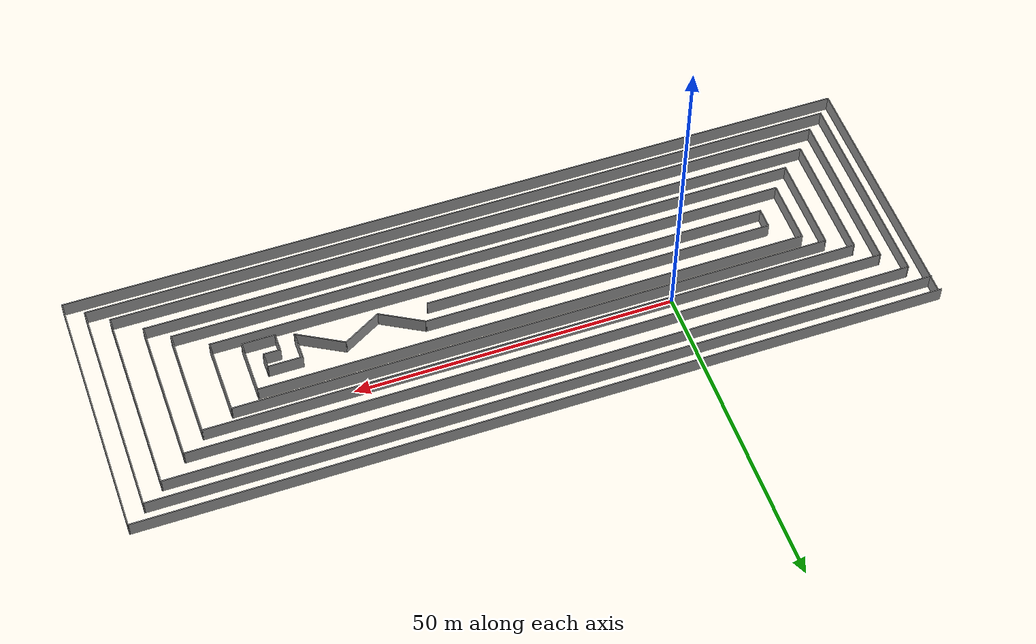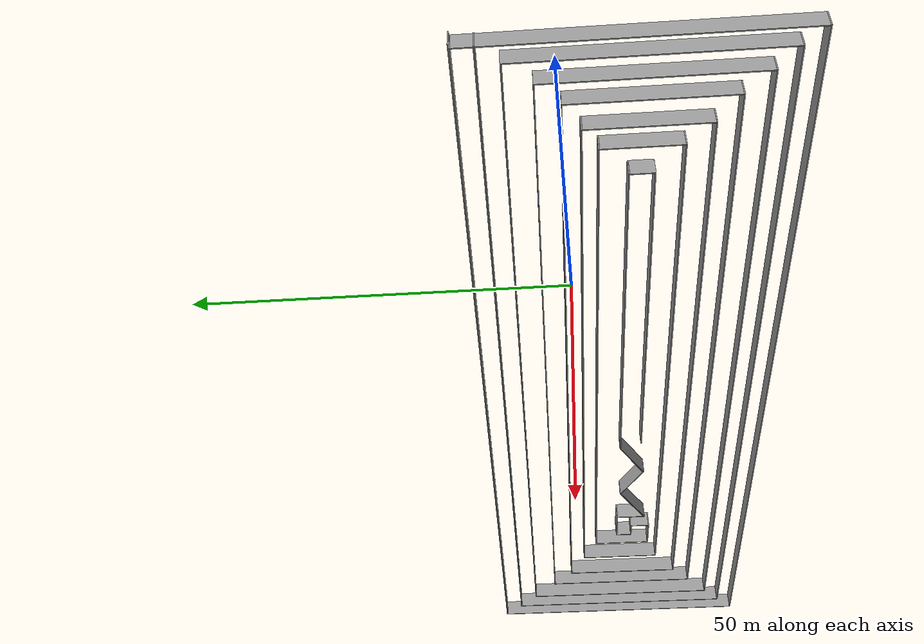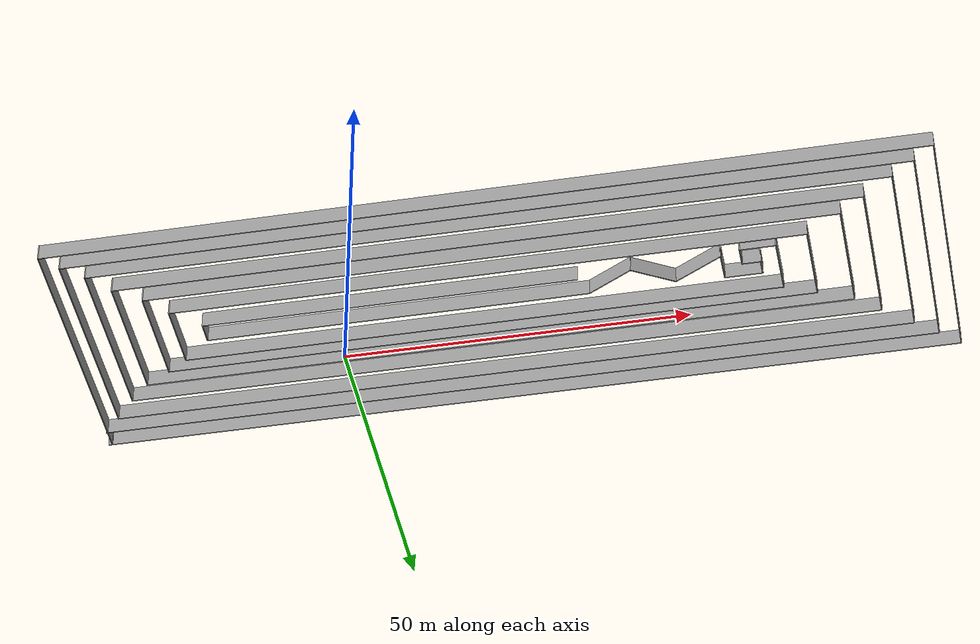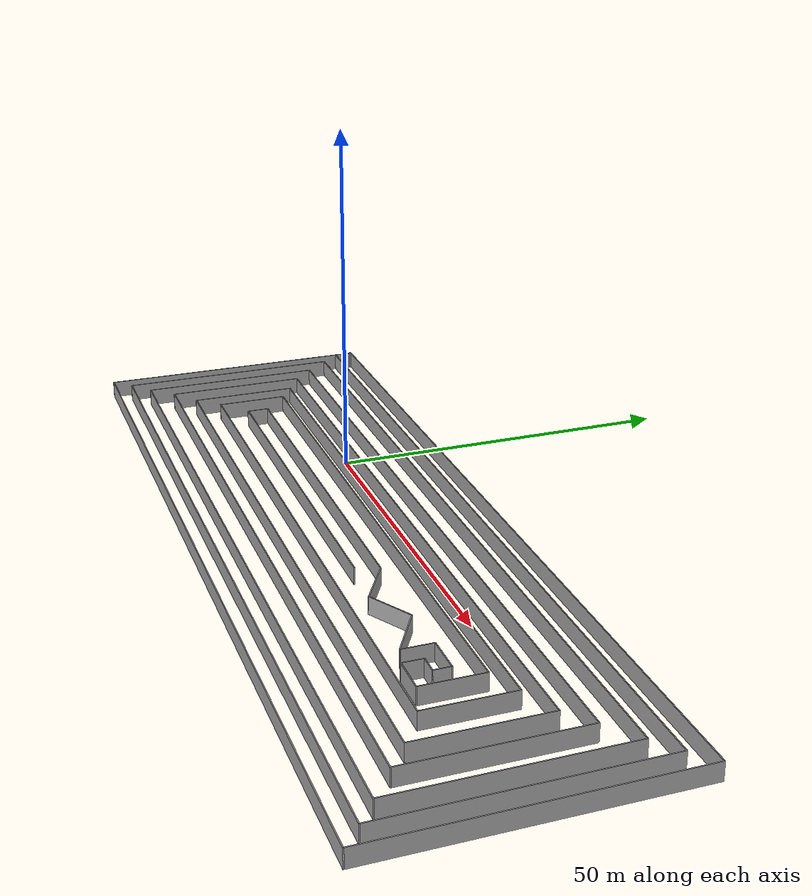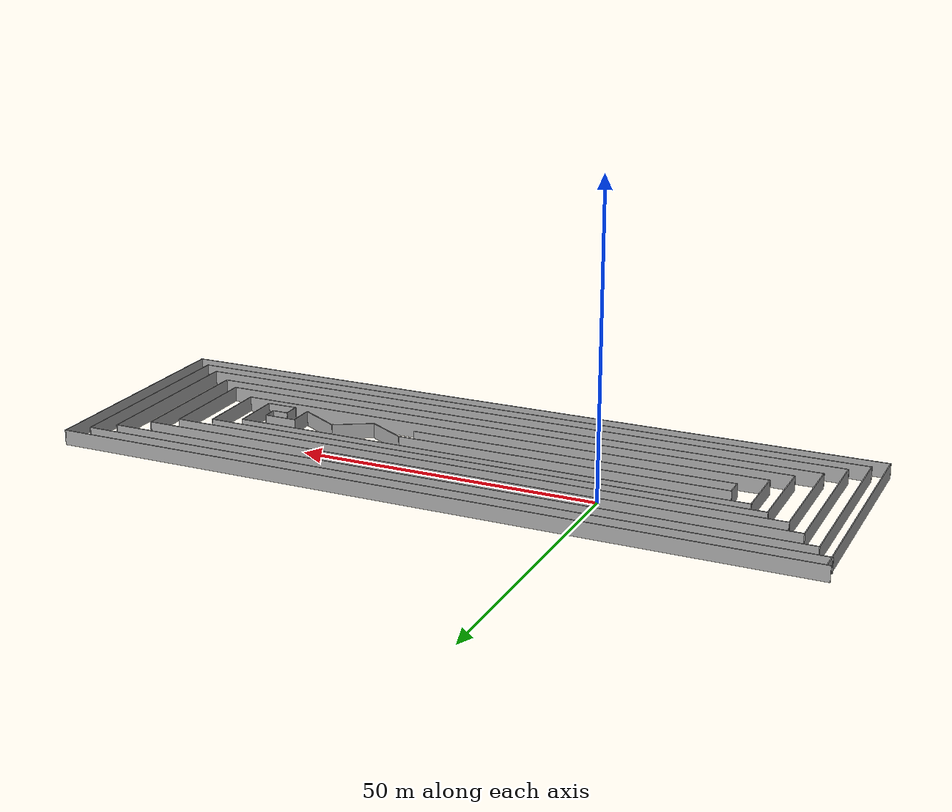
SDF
<?xml version='1.0'?>
<sdf version='1.6'>
  <model name='Maze'>
    <pose frame=''>24.3998 -7.48678 0 0 -0 0</pose>
    <link name='Wall_0'>
      <collision name='Wall_0_Collision'>
        <geometry>
          <box>
            <size>125.25 0.15 2.5</size>
          </box>
        </geometry>
        <pose frame=''>0 0 1.25 0 -0 0</pose>
      </collision>
      <visual name='Wall_0_Visual'>
        <pose frame=''>0 0 1.25 0 -0 0</pose>
        <geometry>
          <box>
            <size>125.25 0.15 2.5</size>
          </box>
        </geometry>
        <material>
          <script>
            <uri>file://media/materials/scripts/gazebo.material</uri>
            <name>Gazebo/Grey</name>
          </script>
          <ambient>1 1 1 1</ambient>
        </material>
      </visual>
      <pose frame=''>-4e-06 20.3 0 0 -0 0</pose>
    </link>
    <link name='Wall_1'>
      <collision name='Wall_1_Collision'>
        <geometry>
          <box>
            <size>40.75 0.15 2.5</size>
          </box>
        </geometry>
        <pose frame=''>0 0 1.25 0 -0 0</pose>
      </collision>
      <visual name='Wall_1_Visual'>
        <pose frame=''>0 0 1.25 0 -0 0</pose>
        <geometry>
          <box>
            <size>40.75 0.15 2.5</size>
          </box>
        </geometry>
        <material>
          <script>
            <uri>file://media/materials/scripts/gazebo.material</uri>
            <name>Gazebo/Grey</name>
          </script>
          <ambient>1 1 1 1</ambient>
        </material>
      </visual>
      <pose frame=''>62.55 0 0 0 0 -1.5708</pose>
    </link>
    <link name='Wall_10'>
      <collision name='Wall_10_Collision'>
        <geometry>
          <box>
            <size>116.25 0.15 2.5</size>
          </box>
        </geometry>
        <pose frame=''>0 0 1.25 0 -0 0</pose>
      </collision>
      <visual name='Wall_10_Visual'>
        <pose frame=''>0 0 1.25 0 -0 0</pose>
        <geometry>
          <box>
            <size>116.25 0.15 2.5</size>
          </box>
        </geometry>
        <material>
          <script>
            <uri>file://media/materials/scripts/gazebo.material</uri>
            <name>Gazebo/Grey</name>
          </script>
          <ambient>1 1 1 1</ambient>
        </material>
      </visual>
      <pose frame=''>-1.62974 14.8161 0 0 -0 0</pose>
    </link>
    <link name='Wall_11'>
      <collision name='Wall_11_Collision'>
        <geometry>
          <box>
            <size>30.25 0.15 2.5</size>
          </box>
        </geometry>
        <pose frame=''>0 0 1.25 0 -0 0</pose>
      </collision>
      <visual name='Wall_11_Visual'>
        <pose frame=''>0 0 1.25 0 -0 0</pose>
        <geometry>
          <box>
            <size>30.25 0.15 2.5</size>
          </box>
        </geometry>
        <material>
          <script>
            <uri>file://media/materials/scripts/gazebo.material</uri>
            <name>Gazebo/Grey</name>
          </script>
          <ambient>1 1 1 1</ambient>
        </material>
      </visual>
      <pose frame=''>56.4203 -0.233869 0 0 0 -1.5708</pose>
    </link>
    <link name='Wall_12'>
      <collision name='Wall_12_Collision'>
        <geometry>
          <box>
            <size>113.25 0.15 2.5</size>
          </box>
        </geometry>
        <pose frame=''>0 0 1.25 0 -0 0</pose>
      </collision>
      <visual name='Wall_12_Visual'>
        <pose frame=''>0 0 1.25 0 -0 0</pose>
        <geometry>
          <box>
            <size>113.25 0.15 2.5</size>
          </box>
        </geometry>
        <material>
          <script>
            <uri>file://media/materials/scripts/gazebo.material</uri>
            <name>Gazebo/Grey</name>
          </script>
          <ambient>1 1 1 1</ambient>
        </material>
      </visual>
      <pose frame=''>-0.129736 -15.2839 0 0 -0 3.14159</pose>
    </link>
    <link name='Wall_13'>
      <collision name='Wall_13_Collision'>
        <geometry>
          <box>
            <size>26.75 0.15 2.5</size>
          </box>
        </geometry>
        <pose frame=''>0 0 1.25 0 -0 0</pose>
      </collision>
      <visual name='Wall_13_Visual'>
        <pose frame=''>0 0 1.25 0 -0 0</pose>
        <geometry>
          <box>
            <size>26.75 0.15 2.5</size>
          </box>
        </geometry>
        <material>
          <script>
            <uri>file://media/materials/scripts/gazebo.material</uri>
            <name>Gazebo/Grey</name>
          </script>
          <ambient>1 1 1 1</ambient>
        </material>
      </visual>
      <pose frame=''>-56.6797 -1.98387 0 0 -0 1.5708</pose>
    </link>
    <link name='Wall_14'>
      <collision name='Wall_14_Collision'>
        <geometry>
          <box>
            <size>109 0.15 2.5</size>
          </box>
        </geometry>
        <pose frame=''>0 0 1.25 0 -0 0</pose>
      </collision>
      <visual name='Wall_14_Visual'>
        <pose frame=''>0 0 1.25 0 -0 0</pose>
        <geometry>
          <box>
            <size>109 0.15 2.5</size>
          </box>
        </geometry>
        <material>
          <script>
            <uri>file://media/materials/scripts/gazebo.material</uri>
            <name>Gazebo/Grey</name>
          </script>
          <ambient>1 1 1 1</ambient>
        </material>
      </visual>
      <pose frame=''>-2.25474 11.3161 0 0 -0 0</pose>
    </link>
    <link name='Wall_15'>
      <collision name='Wall_15_Collision'>
        <geometry>
          <box>
            <size>23.5 0.15 2.5</size>
          </box>
        </geometry>
        <pose frame=''>0 0 1.25 0 -0 0</pose>
      </collision>
      <visual name='Wall_15_Visual'>
        <pose frame=''>0 0 1.25 0 -0 0</pose>
        <geometry>
          <box>
            <size>23.5 0.15 2.5</size>
          </box>
        </geometry>
        <material>
          <script>
            <uri>file://media/materials/scripts/gazebo.material</uri>
            <name>Gazebo/Grey</name>
          </script>
          <ambient>1 1 1 1</ambient>
        </material>
      </visual>
      <pose frame=''>52.1703 -0.358869 0 0 0 -1.5708</pose>
    </link>
    <link name='Wall_16'>
      <collision name='Wall_16_Collision'>
        <geometry>
          <box>
            <size>106 0.15 2.5</size>
          </box>
        </geometry>
        <pose frame=''>0 0 1.25 0 -0 0</pose>
      </collision>
      <visual name='Wall_16_Visual'>
        <pose frame=''>0 0 1.25 0 -0 0</pose>
        <geometry>
          <box>
            <size>106 0.15 2.5</size>
          </box>
        </geometry>
        <material>
          <script>
            <uri>file://media/materials/scripts/gazebo.material</uri>
            <name>Gazebo/Grey</name>
          </script>
          <ambient>1 1 1 1</ambient>
        </material>
      </visual>
      <pose frame=''>-0.754736 -12.0339 0 0 -0 3.14159</pose>
    </link>
    <link name='Wall_17'>
      <collision name='Wall_17_Collision'>
        <geometry>
          <box>
            <size>20.5 0.15 2.5</size>
          </box>
        </geometry>
        <pose frame=''>0 0 1.25 0 -0 0</pose>
      </collision>
      <visual name='Wall_17_Visual'>
        <pose frame=''>0 0 1.25 0 -0 0</pose>
        <geometry>
          <box>
            <size>20.5 0.15 2.5</size>
          </box>
        </geometry>
        <material>
          <script>
            <uri>file://media/materials/scripts/gazebo.material</uri>
            <name>Gazebo/Grey</name>
          </script>
          <ambient>1 1 1 1</ambient>
        </material>
      </visual>
      <pose frame=''>-53.6797 -1.85887 0 0 -0 1.5708</pose>
    </link>
    <link name='Wall_18'>
      <collision name='Wall_18_Collision'>
        <geometry>
          <box>
            <size>102.5 0.15 2.5</size>
          </box>
        </geometry>
        <pose frame=''>0 0 1.25 0 -0 0</pose>
      </collision>
      <visual name='Wall_18_Visual'>
        <pose frame=''>0 0 1.25 0 -0 0</pose>
        <geometry>
          <box>
            <size>102.5 0.15 2.5</size>
          </box>
        </geometry>
        <material>
          <script>
            <uri>file://media/materials/scripts/gazebo.material</uri>
            <name>Gazebo/Grey</name>
          </script>
          <ambient>1 1 1 1</ambient>
        </material>
      </visual>
      <pose frame=''>-2.50474 8.31613 0 0 -0 0</pose>
    </link>
    <link name='Wall_19'>
      <collision name='Wall_19_Collision'>
        <geometry>
          <box>
            <size>17.75 0.15 2.5</size>
          </box>
        </geometry>
        <pose frame=''>0 0 1.25 0 -0 0</pose>
      </collision>
      <visual name='Wall_19_Visual'>
        <pose frame=''>0 0 1.25 0 -0 0</pose>
        <geometry>
          <box>
            <size>17.75 0.15 2.5</size>
          </box>
        </geometry>
        <material>
          <script>
            <uri>file://media/materials/scripts/gazebo.material</uri>
            <name>Gazebo/Grey</name>
          </script>
          <ambient>1 1 1 1</ambient>
        </material>
      </visual>
      <pose frame=''>48.6703 -0.483869 0 0 0 -1.5708</pose>
    </link>
    <link name='Wall_2'>
      <collision name='Wall_2_Collision'>
        <geometry>
          <box>
            <size>124.75 0.15 2.5</size>
          </box>
        </geometry>
        <pose frame=''>0 0 1.25 0 -0 0</pose>
      </collision>
      <visual name='Wall_2_Visual'>
        <pose frame=''>0 0 1.25 0 -0 0</pose>
        <geometry>
          <box>
            <size>124.75 0.15 2.5</size>
          </box>
        </geometry>
        <material>
          <script>
            <uri>file://media/materials/scripts/gazebo.material</uri>
            <name>Gazebo/Grey</name>
          </script>
          <ambient>1 1 1 1</ambient>
        </material>
      </visual>
      <pose frame=''>0.249996 -20.3 0 0 -0 3.14159</pose>
    </link>
    <link name='Wall_20'>
      <collision name='Wall_20_Collision'>
        <geometry>
          <box>
            <size>98.75 0.15 2.5</size>
          </box>
        </geometry>
        <pose frame=''>0 0 1.25 0 -0 0</pose>
      </collision>
      <visual name='Wall_20_Visual'>
        <pose frame=''>0 0 1.25 0 -0 0</pose>
        <geometry>
          <box>
            <size>98.75 0.15 2.5</size>
          </box>
        </geometry>
        <material>
          <script>
            <uri>file://media/materials/scripts/gazebo.material</uri>
            <name>Gazebo/Grey</name>
          </script>
          <ambient>1 1 1 1</ambient>
        </material>
      </visual>
      <pose frame=''>-0.629736 -9.28387 0 0 -0 3.14159</pose>
    </link>
    <link name='Wall_21'>
      <collision name='Wall_21_Collision'>
        <geometry>
          <box>
            <size>15.5 0.15 2.5</size>
          </box>
        </geometry>
        <pose frame=''>0 0 1.25 0 -0 0</pose>
      </collision>
      <visual name='Wall_21_Visual'>
        <pose frame=''>0 0 1.25 0 -0 0</pose>
        <geometry>
          <box>
            <size>15.5 0.15 2.5</size>
          </box>
        </geometry>
        <material>
          <script>
            <uri>file://media/materials/scripts/gazebo.material</uri>
            <name>Gazebo/Grey</name>
          </script>
          <ambient>1 1 1 1</ambient>
        </material>
      </visual>
      <pose frame=''>-49.9297 -1.60887 0 0 -0 1.5708</pose>
    </link>
    <link name='Wall_22'>
      <collision name='Wall_22_Collision'>
        <geometry>
          <box>
            <size>93.75 0.15 2.5</size>
          </box>
        </geometry>
        <pose frame=''>0 0 1.25 0 -0 0</pose>
      </collision>
      <visual name='Wall_22_Visual'>
        <pose frame=''>0 0 1.25 0 -0 0</pose>
        <geometry>
          <box>
            <size>93.75 0.15 2.5</size>
          </box>
        </geometry>
        <material>
          <script>
            <uri>file://media/materials/scripts/gazebo.material</uri>
            <name>Gazebo/Grey</name>
          </script>
          <ambient>1 1 1 1</ambient>
        </material>
      </visual>
      <pose frame=''>-3.12974 6.06613 0 0 -0 0</pose>
    </link>
    <link name='Wall_23'>
      <collision name='Wall_23_Collision'>
        <geometry>
          <box>
            <size>12.25 0.15 2.5</size>
          </box>
        </geometry>
        <pose frame=''>0 0 1.25 0 -0 0</pose>
      </collision>
      <visual name='Wall_23_Visual'>
        <pose frame=''>0 0 1.25 0 -0 0</pose>
        <geometry>
          <box>
            <size>12.25 0.15 2.5</size>
          </box>
        </geometry>
        <material>
          <script>
            <uri>file://media/materials/scripts/gazebo.material</uri>
            <name>Gazebo/Grey</name>
          </script>
          <ambient>1 1 1 1</ambient>
        </material>
      </visual>
      <pose frame=''>43.6703 0.016131 0 0 0 -1.5708</pose>
    </link>
    <link name='Wall_24'>
      <collision name='Wall_24_Collision'>
        <geometry>
          <box>
            <size>90.75 0.15 2.5</size>
          </box>
        </geometry>
        <pose frame=''>0 0 1.25 0 -0 0</pose>
      </collision>
      <visual name='Wall_24_Visual'>
        <pose frame=''>0 0 1.25 0 -0 0</pose>
        <geometry>
          <box>
            <size>90.75 0.15 2.5</size>
          </box>
        </geometry>
        <material>
          <script>
            <uri>file://media/materials/scripts/gazebo.material</uri>
            <name>Gazebo/Grey</name>
          </script>
          <ambient>1 1 1 1</ambient>
        </material>
      </visual>
      <pose frame=''>-1.62974 -6.03387 0 0 -0 3.14159</pose>
    </link>
    <link name='Wall_25'>
      <collision name='Wall_25_Collision'>
        <geometry>
          <box>
            <size>10.25 0.15 2.5</size>
          </box>
        </geometry>
        <pose frame=''>0 0 1.25 0 -0 0</pose>
      </collision>
      <visual name='Wall_25_Visual'>
        <pose frame=''>0 0 1.25 0 -0 0</pose>
        <geometry>
          <box>
            <size>10.25 0.15 2.5</size>
          </box>
        </geometry>
        <material>
          <script>
            <uri>file://media/materials/scripts/gazebo.material</uri>
            <name>Gazebo/Grey</name>
          </script>
          <ambient>1 1 1 1</ambient>
        </material>
      </visual>
      <pose frame=''>-46.9297 -0.983869 0 0 -0 1.5708</pose>
    </link>
    <link name='Wall_26'>
      <collision name='Wall_26_Collision'>
        <geometry>
          <box>
            <size>86.25 0.15 2.5</size>
          </box>
        </geometry>
        <pose frame=''>0 0 1.25 0 -0 0</pose>
      </collision>
      <visual name='Wall_26_Visual'>
        <pose frame=''>0 0 1.25 0 -0 0</pose>
        <geometry>
          <box>
            <size>86.25 0.15 2.5</size>
          </box>
        </geometry>
        <material>
          <script>
            <uri>file://media/materials/scripts/gazebo.material</uri>
            <name>Gazebo/Grey</name>
          </script>
          <ambient>1 1 1 1</ambient>
        </material>
      </visual>
      <pose frame=''>-3.87974 4.06613 0 0 -0 0</pose>
    </link>
    <link name='Wall_27'>
      <collision name='Wall_27_Collision'>
        <geometry>
          <box>
            <size>8.75 0.15 2.5</size>
          </box>
        </geometry>
        <pose frame=''>0 0 1.25 0 -0 0</pose>
      </collision>
      <visual name='Wall_27_Visual'>
        <pose frame=''>0 0 1.25 0 -0 0</pose>
        <geometry>
          <box>
            <size>8.75 0.15 2.5</size>
          </box>
        </geometry>
        <material>
          <script>
            <uri>file://media/materials/scripts/gazebo.material</uri>
            <name>Gazebo/Grey</name>
          </script>
          <ambient>1 1 1 1</ambient>
        </material>
      </visual>
      <pose frame=''>39.1703 -0.233869 0 0 0 -1.5708</pose>
    </link>
    <link name='Wall_28'>
      <collision name='Wall_28_Collision'>
        <geometry>
          <box>
            <size>5.25 0.15 2.5</size>
          </box>
        </geometry>
        <pose frame=''>0 0 1.25 0 -0 0</pose>
      </collision>
      <visual name='Wall_28_Visual'>
        <pose frame=''>0 0 1.25 0 -0 0</pose>
        <geometry>
          <box>
            <size>5.25 0.15 2.5</size>
          </box>
        </geometry>
        <material>
          <script>
            <uri>file://media/materials/scripts/gazebo.material</uri>
            <name>Gazebo/Grey</name>
          </script>
          <ambient>1 1 1 1</ambient>
        </material>
      </visual>
      <pose frame=''>36.6203 -4.53387 0 0 -0 3.14159</pose>
    </link>
    <link name='Wall_29'>
      <collision name='Wall_29_Collision'>
        <geometry>
          <box>
            <size>3 0.15 2.5</size>
          </box>
        </geometry>
        <pose frame=''>0 0 1.25 0 -0 0</pose>
      </collision>
      <visual name='Wall_29_Visual'>
        <pose frame=''>0 0 1.25 0 -0 0</pose>
        <geometry>
          <box>
            <size>3 0.15 2.5</size>
          </box>
        </geometry>
        <material>
          <script>
            <uri>file://media/materials/scripts/gazebo.material</uri>
            <name>Gazebo/Grey</name>
          </script>
          <ambient>1 1 1 1</ambient>
        </material>
      </visual>
      <pose frame=''>34.0703 -3.10887 0 0 -0 1.5708</pose>
    </link>
    <link name='Wall_3'>
      <collision name='Wall_3_Collision'>
        <geometry>
          <box>
            <size>40.5 0.15 2.5</size>
          </box>
        </geometry>
        <pose frame=''>0 0 1.25 0 -0 0</pose>
      </collision>
      <visual name='Wall_3_Visual'>
        <pose frame=''>0 0 1.25 0 -0 0</pose>
        <geometry>
          <box>
            <size>40.5 0.15 2.5</size>
          </box>
        </geometry>
        <material>
          <script>
            <uri>file://media/materials/scripts/gazebo.material</uri>
            <name>Gazebo/Grey</name>
          </script>
          <ambient>1 1 1 1</ambient>
        </material>
      </visual>
      <pose frame=''>-62.05 -0.125 0 0 -0 1.5708</pose>
    </link>
    <link name='Wall_30'>
      <collision name='Wall_30_Collision'>
        <geometry>
          <box>
            <size>2.75 0.15 2.5</size>
          </box>
        </geometry>
        <pose frame=''>0 0 1.25 0 -0 0</pose>
      </collision>
      <visual name='Wall_30_Visual'>
        <pose frame=''>0 0 1.25 0 -0 0</pose>
        <geometry>
          <box>
            <size>2.75 0.15 2.5</size>
          </box>
        </geometry>
        <material>
          <script>
            <uri>file://media/materials/scripts/gazebo.material</uri>
            <name>Gazebo/Grey</name>
          </script>
          <ambient>1 1 1 1</ambient>
        </material>
      </visual>
      <pose frame=''>35.3703 -1.68387 0 0 -0 0</pose>
    </link>
    <link name='Wall_31'>
      <collision name='Wall_31_Collision'>
        <geometry>
          <box>
            <size>2.5 0.15 2.5</size>
          </box>
        </geometry>
        <pose frame=''>0 0 1.25 0 -0 0</pose>
      </collision>
      <visual name='Wall_31_Visual'>
        <pose frame=''>0 0 1.25 0 -0 0</pose>
        <geometry>
          <box>
            <size>2.5 0.15 2.5</size>
          </box>
        </geometry>
        <material>
          <script>
            <uri>file://media/materials/scripts/gazebo.material</uri>
            <name>Gazebo/Grey</name>
          </script>
          <ambient>1 1 1 1</ambient>
        </material>
      </visual>
      <pose frame=''>36.6703 -0.508869 0 0 -0 1.5708</pose>
    </link>
    <link name='Wall_32'>
      <collision name='Wall_32_Collision'>
        <geometry>
          <box>
            <size>5.5 0.15 2.5</size>
          </box>
        </geometry>
        <pose frame=''>0 0 1.25 0 -0 0</pose>
      </collision>
      <visual name='Wall_32_Visual'>
        <pose frame=''>0 0 1.25 0 -0 0</pose>
        <geometry>
          <box>
            <size>5.5 0.15 2.5</size>
          </box>
        </geometry>
        <material>
          <script>
            <uri>file://media/materials/scripts/gazebo.material</uri>
            <name>Gazebo/Grey</name>
          </script>
          <ambient>1 1 1 1</ambient>
        </material>
      </visual>
      <pose frame=''>33.9953 0.666131 0 0 -0 3.14159</pose>
    </link>
    <link name='Wall_33'>
      <collision name='Wall_33_Collision'>
        <geometry>
          <box>
            <size>4.5 0.15 2.5</size>
          </box>
        </geometry>
        <pose frame=''>0 0 1.25 0 -0 0</pose>
      </collision>
      <visual name='Wall_33_Visual'>
        <pose frame=''>0 0 1.25 0 -0 0</pose>
        <geometry>
          <box>
            <size>4.5 0.15 2.5</size>
          </box>
        </geometry>
        <material>
          <script>
            <uri>file://media/materials/scripts/gazebo.material</uri>
            <name>Gazebo/Grey</name>
          </script>
          <ambient>1 1 1 1</ambient>
        </material>
      </visual>
      <pose frame=''>31.3203 -1.50887 0 0 0 -1.5708</pose>
    </link>
    <link name='Wall_34'>
      <collision name='Wall_34_Collision'>
        <geometry>
          <box>
            <size>8 0.15 2.5</size>
          </box>
        </geometry>
        <pose frame=''>0 0 1.25 0 -0 0</pose>
      </collision>
      <visual name='Wall_34_Visual'>
        <pose frame=''>0 0 1.25 0 -0 0</pose>
        <geometry>
          <box>
            <size>8 0.15 2.5</size>
          </box>
        </geometry>
        <material>
          <script>
            <uri>file://media/materials/scripts/gazebo.material</uri>
            <name>Gazebo/Grey</name>
          </script>
          <ambient>1 1 1 1</ambient>
        </material>
      </visual>
      <pose frame=''>27.9211 -1.72137 0 0 -0 2.61799</pose>
    </link>
    <link name='Wall_35'>
      <collision name='Wall_35_Collision'>
        <geometry>
          <box>
            <size>7 0.15 2.5</size>
          </box>
        </geometry>
        <pose frame=''>0 0 1.25 0 -0 0</pose>
      </collision>
      <visual name='Wall_35_Visual'>
        <pose frame=''>0 0 1.25 0 -0 0</pose>
        <geometry>
          <box>
            <size>7 0.15 2.5</size>
          </box>
        </geometry>
        <material>
          <script>
            <uri>file://media/materials/scripts/gazebo.material</uri>
            <name>Gazebo/Grey</name>
          </script>
          <ambient>1 1 1 1</ambient>
        </material>
      </visual>
      <pose frame=''>21.5558 -1.47137 0 0 0 -2.61799</pose>
    </link>
    <link name='Wall_36'>
      <collision name='Wall_36_Collision'>
        <geometry>
          <box>
            <size>7.5 0.15 2.5</size>
          </box>
        </geometry>
        <pose frame=''>0 0 1.25 0 -0 0</pose>
      </collision>
      <visual name='Wall_36_Visual'>
        <pose frame=''>0 0 1.25 0 -0 0</pose>
        <geometry>
          <box>
            <size>7.5 0.15 2.5</size>
          </box>
        </geometry>
        <material>
          <script>
            <uri>file://media/materials/scripts/gazebo.material</uri>
            <name>Gazebo/Grey</name>
          </script>
          <ambient>1 1 1 1</ambient>
        </material>
      </visual>
      <pose frame=''>15.407 -1.34637 0 0 -0 2.61799</pose>
    </link>
    <link name='Wall_37'>
      <collision name='Wall_37_Collision'>
        <geometry>
          <box>
            <size>55.25 0.15 2.5</size>
          </box>
        </geometry>
        <pose frame=''>0 0 1.25 0 -0 0</pose>
      </collision>
      <visual name='Wall_37_Visual'>
        <pose frame=''>0 0 1.25 0 -0 0</pose>
        <geometry>
          <box>
            <size>55.25 0.15 2.5</size>
          </box>
        </geometry>
        <material>
          <script>
            <uri>file://media/materials/scripts/gazebo.material</uri>
            <name>Gazebo/Grey</name>
          </script>
          <ambient>1 1 1 1</ambient>
        </material>
      </visual>
      <pose frame=''>-15.3256 0.491131 0 0 -0 3.14159</pose>
    </link>
    <link name='Wall_38'>
      <collision name='Wall_38_Collision'>
        <geometry>
          <box>
            <size>3.25 0.15 2.5</size>
          </box>
        </geometry>
        <pose frame=''>0 0 1.25 0 -0 0</pose>
      </collision>
      <visual name='Wall_38_Visual'>
        <pose frame=''>0 0 1.25 0 -0 0</pose>
        <geometry>
          <box>
            <size>3.25 0.15 2.5</size>
          </box>
        </geometry>
        <material>
          <script>
            <uri>file://media/materials/scripts/gazebo.material</uri>
            <name>Gazebo/Grey</name>
          </script>
          <ambient>1 1 1 1</ambient>
        </material>
      </visual>
      <pose frame=''>-42.8756 -1.05887 0 0 0 -1.5708</pose>
    </link>
    <link name='Wall_39'>
      <collision name='Wall_39_Collision'>
        <geometry>
          <box>
            <size>54 0.15 2.5</size>
          </box>
        </geometry>
        <pose frame=''>0 0 1.25 0 -0 0</pose>
      </collision>
      <visual name='Wall_39_Visual'>
        <pose frame=''>0 0 1.25 0 -0 0</pose>
        <geometry>
          <box>
            <size>54 0.15 2.5</size>
          </box>
        </geometry>
        <material>
          <script>
            <uri>file://media/materials/scripts/gazebo.material</uri>
            <name>Gazebo/Grey</name>
          </script>
          <ambient>1 1 1 1</ambient>
        </material>
      </visual>
      <pose frame=''>-15.9506 -2.60887 0 0 -0 0</pose>
    </link>
    <link name='Wall_4'>
      <collision name='Wall_4_Collision'>
        <geometry>
          <box>
            <size>0.25 0.15 2.5</size>
          </box>
        </geometry>
        <pose frame=''>0 0 1.25 0 -0 0</pose>
      </collision>
      <visual name='Wall_4_Visual'>
        <pose frame=''>0 0 1.25 0 -0 0</pose>
        <geometry>
          <box>
            <size>0.25 0.15 2.5</size>
          </box>
        </geometry>
        <material>
          <script>
            <uri>file://media/materials/scripts/gazebo.material</uri>
            <name>Gazebo/Grey</name>
          </script>
          <ambient>1 1 1 1</ambient>
        </material>
      </visual>
      <pose frame=''>-62.05 20.1 0 0 -0 1.5708</pose>
    </link>
    <link name='Wall_6'>
      <collision name='Wall_6_Collision'>
        <geometry>
          <box>
            <size>122 0.15 2.5</size>
          </box>
        </geometry>
        <pose frame=''>0 0 1.25 0 -0 0</pose>
      </collision>
      <visual name='Wall_6_Visual'>
        <pose frame=''>0 0 1.25 0 -0 0</pose>
        <geometry>
          <box>
            <size>122 0.15 2.5</size>
          </box>
        </geometry>
        <material>
          <script>
            <uri>file://media/materials/scripts/gazebo.material</uri>
            <name>Gazebo/Grey</name>
          </script>
          <ambient>1 1 1 1</ambient>
        </material>
      </visual>
      <pose frame=''>-1.25474 17.5661 0 0 -0 0</pose>
    </link>
    <link name='Wall_7'>
      <collision name='Wall_7_Collision'>
        <geometry>
          <box>
            <size>35.5 0.15 2.5</size>
          </box>
        </geometry>
        <pose frame=''>0 0 1.25 0 -0 0</pose>
      </collision>
      <visual name='Wall_7_Visual'>
        <pose frame=''>0 0 1.25 0 -0 0</pose>
        <geometry>
          <box>
            <size>35.5 0.15 2.5</size>
          </box>
        </geometry>
        <material>
          <script>
            <uri>file://media/materials/scripts/gazebo.material</uri>
            <name>Gazebo/Grey</name>
          </script>
          <ambient>1 1 1 1</ambient>
        </material>
      </visual>
      <pose frame=''>59.6703 -0.108869 0 0 0 -1.5708</pose>
    </link>
    <link name='Wall_8'>
      <collision name='Wall_8_Collision'>
        <geometry>
          <box>
            <size>119.5 0.15 2.5</size>
          </box>
        </geometry>
        <pose frame=''>0 0 1.25 0 -0 0</pose>
      </collision>
      <visual name='Wall_8_Visual'>
        <pose frame=''>0 0 1.25 0 -0 0</pose>
        <geometry>
          <box>
            <size>119.5 0.15 2.5</size>
          </box>
        </geometry>
        <material>
          <script>
            <uri>file://media/materials/scripts/gazebo.material</uri>
            <name>Gazebo/Grey</name>
          </script>
          <ambient>1 1 1 1</ambient>
        </material>
      </visual>
      <pose frame=''>-0.004736 -17.7839 0 0 -0 3.14159</pose>
    </link>
    <link name='Wall_9'>
      <collision name='Wall_9_Collision'>
        <geometry>
          <box>
            <size>32.75 0.15 2.5</size>
          </box>
        </geometry>
        <pose frame=''>0 0 1.25 0 -0 0</pose>
      </collision>
      <visual name='Wall_9_Visual'>
        <pose frame=''>0 0 1.25 0 -0 0</pose>
        <geometry>
          <box>
            <size>32.75 0.15 2.5</size>
          </box>
        </geometry>
        <material>
          <script>
            <uri>file://media/materials/scripts/gazebo.material</uri>
            <name>Gazebo/Grey</name>
          </script>
          <ambient>1 1 1 1</ambient>
        </material>
      </visual>
      <pose frame=''>-59.6797 -1.48387 0 0 -0 1.5708</pose>
    </link>
    <static>1</static>
  </model>
</sdf>
